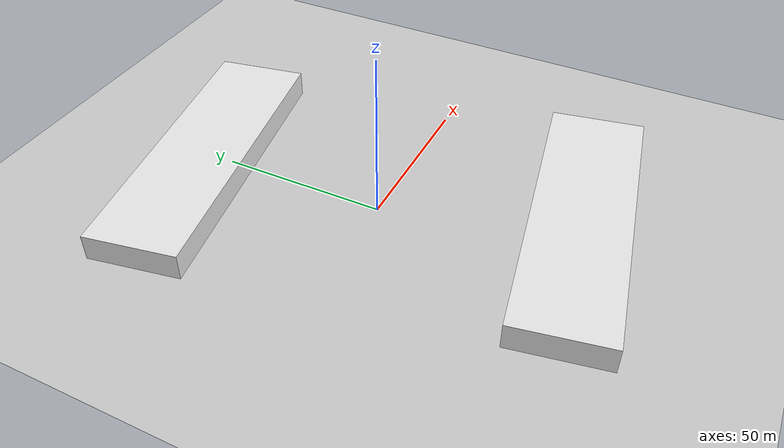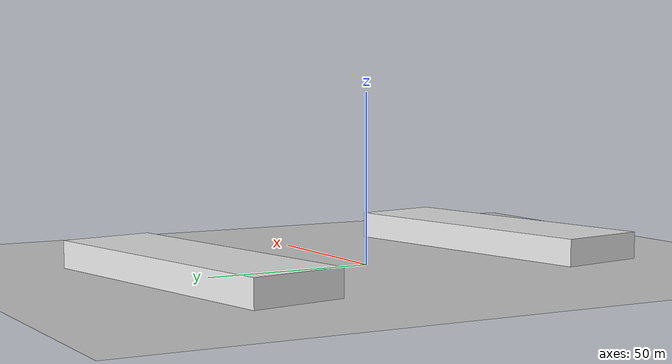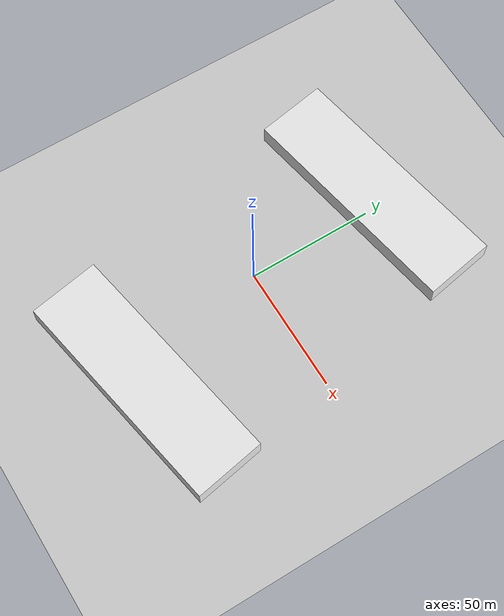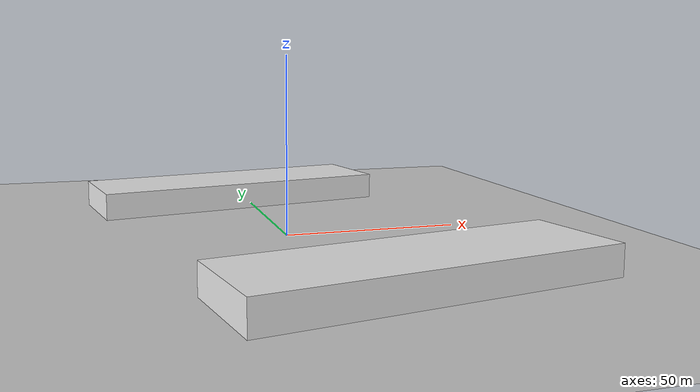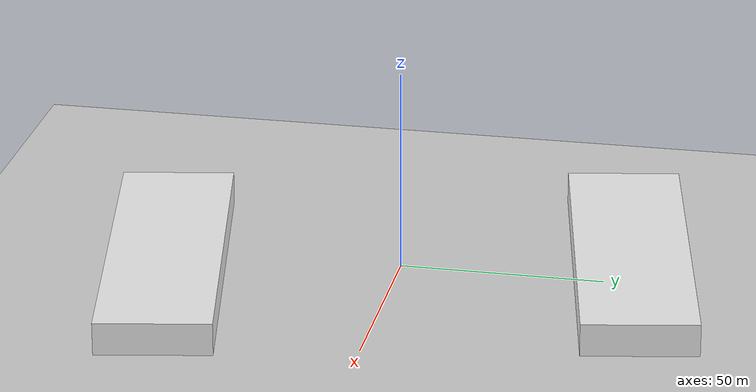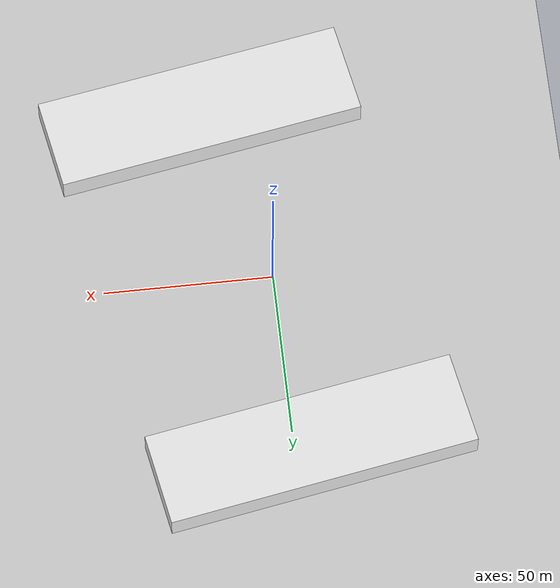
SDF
<?xml version="1.0"?>
<sdf version="1.6">
  <model name="franklin_park">
    <static>true</static>
    <link name="ground">
      <collision name="collision">
        <geometry>
          <plane>
            <normal>0 0 1</normal>
            <size>5000 5000</size>
          </plane>
        </geometry>
        <surface>
          <friction>
            <ode>
              <mu>100</mu>
              <mu2>50</mu2>
            </ode>
          </friction>
        </surface>
      </collision>

      <visual name="ground">
        <pose>0 0 -0.1 0 0 -1.57</pose>
        <cast_shadows>false</cast_shadows>
        <geometry>
          <plane>
            <normal>0 0 1</normal>
            <size>200 200</size>
          </plane>
        </geometry>
        <material>
          <script>
            <uri>model://environment/franklin_park/materials/scripts</uri>
            <uri>model://environment/franklin_park/materials/textures</uri>
            <name>FranklinPark</name>
          </script>
        </material>
      </visual>
    </link>

    <include>
      <name>bleachers_0</name>
      <uri>model://environment/stadium_box</uri>
      <pose frame=''>-5 56 -0.1 0 0 0.18</pose>
    </include>

    <include>
      <name>bleachers_1</name>
      <uri>model://environment/stadium_box</uri>
      <pose frame=''>16 -55 -0.1 0 0 0.18</pose>
    </include>
  </model>
</sdf>

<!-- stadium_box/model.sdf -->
<sdf version='1.6'>
  <model name='stadium_box'>
    <link name='link_0'>
      <pose frame=''>0 0 0 0 -0 0</pose>

      <visual name='visual'>
        <pose frame=''>0 0 4 0 -0 0</pose>
        <geometry>
          <box>
            <size>92 28 8</size>
          </box>
        </geometry>
        <material>
          <lighting>1</lighting>
          <script>
            <uri>file://media/materials/scripts/gazebo.material</uri>
            <name>Gazebo/White</name>
          </script>
          <shader type='pixel'>
            <normal_map>__default__</normal_map>
          </shader>
          <ambient>0.3 0.3 0.3 1</ambient>
          <diffuse>0.7 0.7 0.7 1</diffuse>
          <specular>0.01 0.01 0.01 1</specular>
          <emissive>0 0 0 1</emissive>
        </material>
        <transparency>0</transparency>
        <cast_shadows>1</cast_shadows>
      </visual>
      <collision name='collision'>
        <laser_retro>0</laser_retro>
        <max_contacts>10</max_contacts>
        <pose frame=''>0 0 4 0 -0 0</pose>
        <geometry>
          <box>
            <size>92 28 8</size>
          </box>
        </geometry>
      </collision>
    </link>
    <static>1</static>
  </model>
</sdf>
